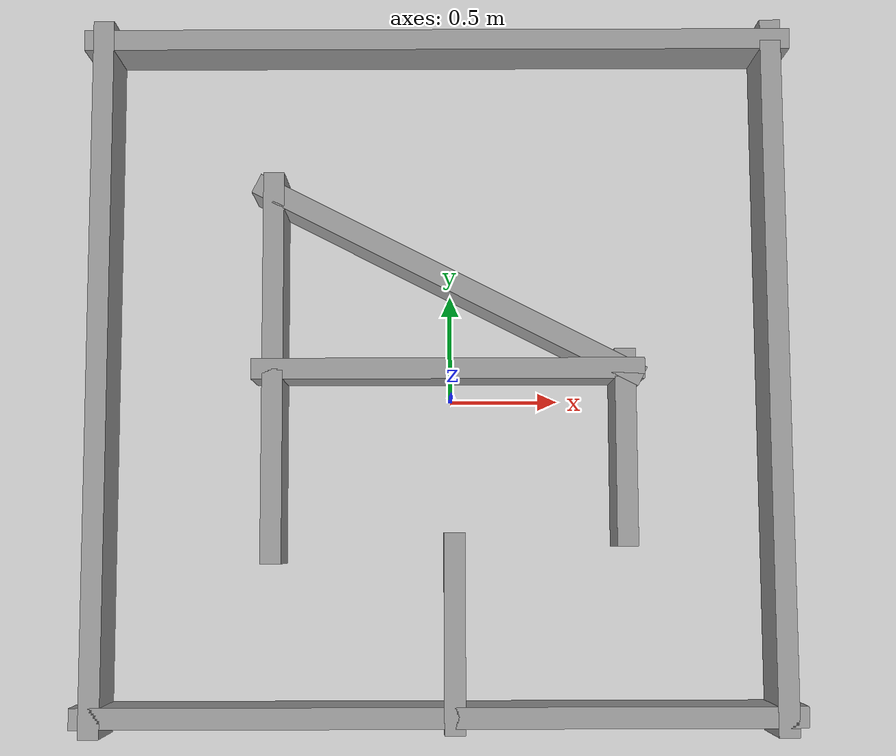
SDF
<sdf version="1.4">
  <world name="default">

    <scene>
      <ambient>0.4 0.4 0.4 1</ambient>
      <background>0.7 0.7 0.7 1</background>
      <shadows>true</shadows>
    </scene>

    <!-- A global light source -->
    <include>
      <uri>model://sun</uri>
    </include>

    <!-- A ground plane -->
    <include>
      <uri>model://ground_plane</uri>
    </include>

    <physics type="ode">
      <real_time_update_rate>1000.0</real_time_update_rate>
      <max_step_size>0.001</max_step_size>
      <real_time_factor>1</real_time_factor>
      <ode>
        <solver>
          <type>quick</type>
          <iters>150</iters>
          <precon_iters>0</precon_iters>
          <sor>1.400000</sor>
          <use_dynamic_moi_rescaling>1</use_dynamic_moi_rescaling>
        </solver>
        <constraints>
          <cfm>0.00001</cfm>
          <erp>0.2</erp>
          <contact_max_correcting_vel>2000.000000</contact_max_correcting_vel>
          <contact_surface_layer>0.01000</contact_surface_layer>
        </constraints>
      </ode>
    </physics>

  <model name='turtlebot3_ultrasonic_demo_world'>
    <pose>-0.059377 -0.003812 0 0 -0 0</pose>
    <link name='Wall_10'>
      <collision name='Wall_10_Collision'>
        <geometry>
          <box>
            <size>2.75 0.08 0.25</size>
          </box>
        </geometry>
        <pose>0 0 1.25 0 -0 0</pose>
      </collision>
      <visual name='Wall_10_Visual'>
        <pose>0 0 1.25 0 -0 0</pose>
        <geometry>
          <box>
            <size>2.75 0.08 0.25</size>
          </box>
        </geometry>
        <material>
          <script>
            <uri>file://media/materials/scripts/gazebo.material</uri>
            <name>Gazebo/Grey</name>
          </script>
          <ambient>1 1 1 1</ambient>
        </material>
        <meta>
          <layer>0</layer>
        </meta>
      </visual>
      <pose>1.3 0 0 0 -0 1.5708</pose>
    </link>
    <link name='Wall_11'>
      <collision name='Wall_11_Collision'>
        <geometry>
          <box>
            <size>2.75 0.08 0.25</size>
          </box>
        </geometry>
        <pose>0 0 1.25 0 -0 0</pose>
      </collision>
      <visual name='Wall_11_Visual'>
        <pose>0 0 1.25 0 -0 0</pose>
        <geometry>
          <box>
            <size>2.75 0.08 0.25</size>
          </box>
        </geometry>
        <material>
          <script>
            <uri>file://media/materials/scripts/gazebo.material</uri>
            <name>Gazebo/Grey</name>
          </script>
          <ambient>1 1 1 1</ambient>
        </material>
        <meta>
          <layer>0</layer>
        </meta>
      </visual>
      <pose>0 1.3 0 0 -0 3.14159</pose>
    </link>
    <link name='Wall_13'>
      <collision name='Wall_13_Collision'>
        <geometry>
          <box>
            <size>0.75 0.08 0.25</size>
          </box>
        </geometry>
        <pose>0 0 1.25 0 -0 0</pose>
      </collision>
      <visual name='Wall_13_Visual'>
        <pose>0 0 1.25 0 -0 0</pose>
        <geometry>
          <box>
            <size>0.75 0.08 0.25</size>
          </box>
        </geometry>
        <material>
          <script>
            <uri>file://media/materials/scripts/gazebo.material</uri>
            <name>Gazebo/Grey</name>
          </script>
          <ambient>1 1 1 1</ambient>
        </material>
        <meta>
          <layer>0</layer>
        </meta>
      </visual>
      <pose>0.060773 -0.990042 0 0 -0 1.5708</pose>
    </link>
    <link name='Wall_15'>
      <collision name='Wall_15_Collision'>
        <geometry>
          <box>
            <size>1.5 0.08 0.25</size>
          </box>
        </geometry>
        <pose>0 0 1.25 0 -0 0</pose>
      </collision>
      <visual name='Wall_15_Visual'>
        <pose>0 0 1.25 0 -0 0</pose>
        <geometry>
          <box>
            <size>1.5 0.08 0.25</size>
          </box>
        </geometry>
        <material>
          <script>
            <uri>file://media/materials/scripts/gazebo.material</uri>
            <name>Gazebo/Grey</name>
          </script>
          <ambient>1 1 1 1</ambient>
        </material>
        <meta>
          <layer>0</layer>
        </meta>
      </visual>
      <pose>-0.631049 0.019604 0 0 -0 1.5708</pose>
    </link>
    <link name='Wall_18'>
      <collision name='Wall_18_Collision'>
        <geometry>
          <box>
            <size>1.5 0.08 0.25</size>
          </box>
        </geometry>
        <pose>0 0 1.25 0 -0 0</pose>
      </collision>
      <visual name='Wall_18_Visual'>
        <pose>0 0 1.25 0 -0 0</pose>
        <geometry>
          <box>
            <size>1.5 0.08 0.25</size>
          </box>
        </geometry>
        <material>
          <script>
            <uri>file://media/materials/scripts/gazebo.material</uri>
            <name>Gazebo/Grey</name>
          </script>
          <ambient>1 1 1 1</ambient>
        </material>
        <meta>
          <layer>0</layer>
        </meta>
      </visual>
      <pose>0.038234 0.007838 0 0 -0 0</pose>
    </link>
    <link name='Wall_19'>
      <collision name='Wall_19_Collision'>
        <geometry>
          <box>
            <size>0.75 0.08 0.25</size>
          </box>
        </geometry>
        <pose>0 0 1.25 0 -0 0</pose>
      </collision>
      <visual name='Wall_19_Visual'>
        <pose>0 0 1.25 0 -0 0</pose>
        <geometry>
          <box>
            <size>0.75 0.08 0.25</size>
          </box>
        </geometry>
        <material>
          <script>
            <uri>file://media/materials/scripts/gazebo.material</uri>
            <name>Gazebo/Grey</name>
          </script>
          <ambient>1 1 1 1</ambient>
        </material>
        <meta>
          <layer>0</layer>
        </meta>
      </visual>
      <pose>0.713234 -0.292162 0 0 -0 -1.5708</pose>
    </link>
    <link name='Wall_21'>
      <collision name='Wall_21_Collision'>
        <geometry>
          <box>
            <size>1.65955 0.08 0.25</size>
          </box>
        </geometry>
        <pose>0 0 1.25 0 -0 0</pose>
      </collision>
      <visual name='Wall_21_Visual'>
        <pose>0 0 1.25 0 -0 0</pose>
        <geometry>
          <box>
            <size>1.65955 0.08 0.25</size>
          </box>
        </geometry>
        <material>
          <script>
            <uri>file://media/materials/scripts/gazebo.material</uri>
            <name>Gazebo/Grey</name>
          </script>
          <ambient>1 1 1 1</ambient>
        </material>
        <meta>
          <layer>0</layer>
        </meta>
      </visual>
      <pose>0.041093 0.351221 0 0 -0 -0.472313</pose>
    </link>
    <link name='Wall_8'>
      <collision name='Wall_8_Collision'>
        <geometry>
          <box>
            <size>2.75 0.08 0.25</size>
          </box>
        </geometry>
        <pose>0 0 1.25 0 -0 0</pose>
      </collision>
      <visual name='Wall_8_Visual'>
        <pose>0 0 1.25 0 -0 0</pose>
        <geometry>
          <box>
            <size>2.75 0.08 0.25</size>
          </box>
        </geometry>
        <material>
          <script>
            <uri>file://media/materials/scripts/gazebo.material</uri>
            <name>Gazebo/Grey</name>
          </script>
          <ambient>1 1 1 1</ambient>
        </material>
        <meta>
          <layer>0</layer>
        </meta>
      </visual>
      <pose>-1.3 0 0 0 -0 -1.5708</pose>
    </link>
    <link name='Wall_9'>
      <collision name='Wall_9_Collision'>
        <geometry>
          <box>
            <size>2.75 0.08 0.25</size>
          </box>
        </geometry>
        <pose>0 0 1.25 0 -0 0</pose>
      </collision>
      <visual name='Wall_9_Visual'>
        <pose>0 0 1.25 0 -0 0</pose>
        <geometry>
          <box>
            <size>2.75 0.08 0.25</size>
          </box>
        </geometry>
        <material>
          <script>
            <uri>file://media/materials/scripts/gazebo.material</uri>
            <name>Gazebo/Grey</name>
          </script>
          <ambient>1 1 1 1</ambient>
        </material>
        <meta>
          <layer>0</layer>
        </meta>
      </visual>
      <pose>0 -1.3 0 0 -0 0</pose>
    </link>
  </model>
  </world>
</sdf>
